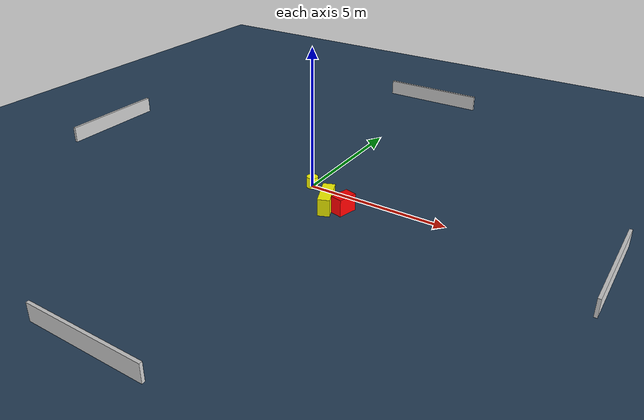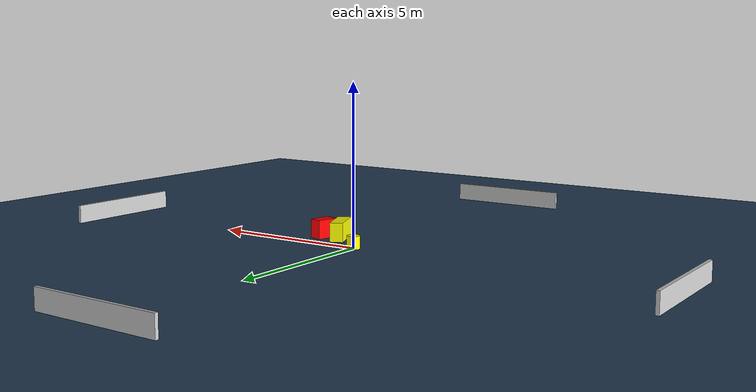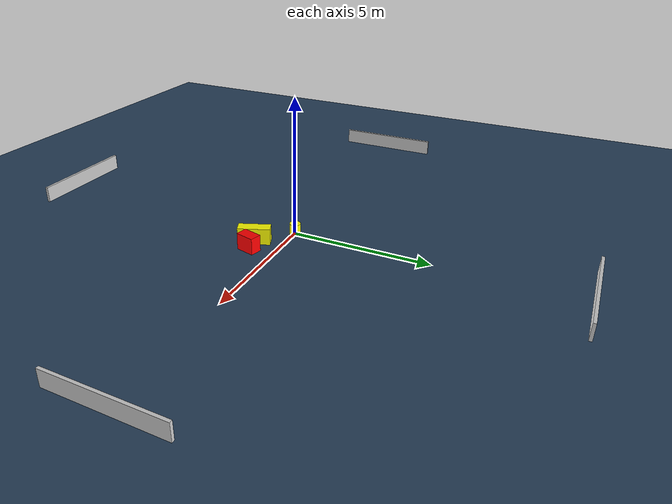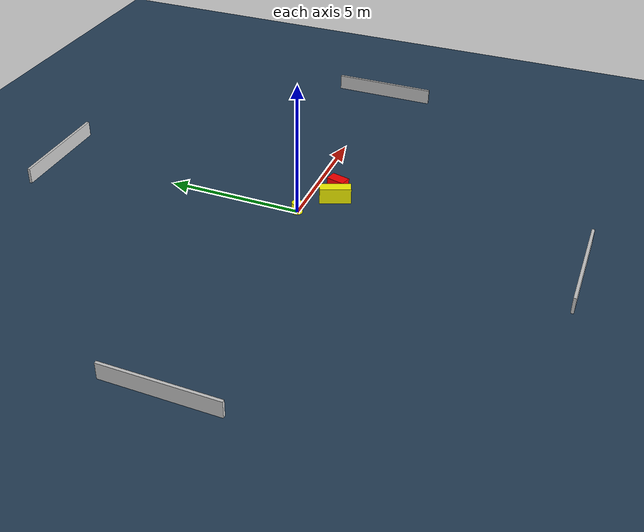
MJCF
<?xml version="1.0" ?>
<mujoco model="generated_environment">
  <option timestep="0.01" integrator="RK4" cone="elliptic"/>
  <default>
    <geom density="1"/>
  </default>
  <asset>
    <texture builtin="gradient" height="3072" name="skybox" rgb1="0.3 0.5 0.7" rgb2="0 0 0" type="skybox" width="512"/>
    <texture builtin="checker" height="300" name="groundplane" rgb1="0.2 0.3 0.4" rgb2="0.1 0.2 0.3" type="2d" width="300"/>
    <material name="groundplane" reflectance="0.2" texrepeat="5 5" texture="groundplane"/>
  </asset>
  <worldbody>
    <light dir="0 0 -1" directional="true" pos="0 0 1.5"/>
    <geom condim="3" friction="0.5 0.005 0.001" material="groundplane" name="floor" pos="0 0 0" size="0 0 0.05" type="plane"/>
    <body name="walls">
      <geom name="wall_1" condim="4" pos="-10.0 0.0 0.3" rgba="0.800000011920929 0.800000011920929 0.800000011920929 1.0" size="0.05 2.0 0.3" type="box"/>
      <geom name="wall_2" condim="4" pos="10.0 0.0 0.3" rgba="0.800000011920929 0.800000011920929 0.800000011920929 1.0" size="0.05 2.0 0.3" type="box"/>
      <geom name="wall_3" condim="4" pos="0.0 -10.0 0.3" rgba="0.800000011920929 0.800000011920929 0.800000011920929 1.0" size="2.0 0.05 0.3" type="box"/>
      <geom name="wall_4" condim="4" pos="0.0 10.0 0.3" rgba="0.800000011920929 0.800000011920929 0.800000011920929 1.0" size="2.0 0.05 0.3" type="box"/>
    </body>
    <body name="robot">
      <joint name="joint_x" type="slide" pos="0 0 0" axis="1 0 0"/>
      <joint name="joint_y" type="slide" pos="0 0 0" axis="0 1 0"/>
      <geom name="robot" type="cylinder" pos="0.0 0.0 0.2" size="0.2 0.2 0.0" mass="5.0" friction="1.0 0.005 0.0001" condim="4" rgba="1.0 1.0 0.0 1.0"/>
    </body>
    <body name="obstacle_1_movable">
      <geom name="obstacle_1_movable" condim="4" pos="1.201923776926223 -0.993231165654451 0.3" euler="0 0 202.47323698162134" friction="0.0 0.005 0.001" rgba="1.0 1.0 0.0 1.0" size="0.2069485746723833 0.5751564393328435 0.3" type="box" mass="0.1"/>
      <joint type="free"/>
    </body>
    <body name="obstacle_2_static">
      <geom name="obstacle_2_static" condim="4" pos="1.7844233099839615 -0.8810218005966518 0.3" euler="0 0 345.82683175826753" friction="0.0 0.005 0.001" rgba="1.0 0.0 0.0 1.0" size="0.2105056527815743 0.3435749394835844 0.3" type="box"/>
    </body>
  </worldbody>
  <actuator>
    <motor name="actuator_x" joint="joint_x" gear="1" ctrlrange="-1 1"/>
    <motor name="actuator_y" joint="joint_y" gear="1" ctrlrange="-1 1"/>
  </actuator>
</mujoco>
